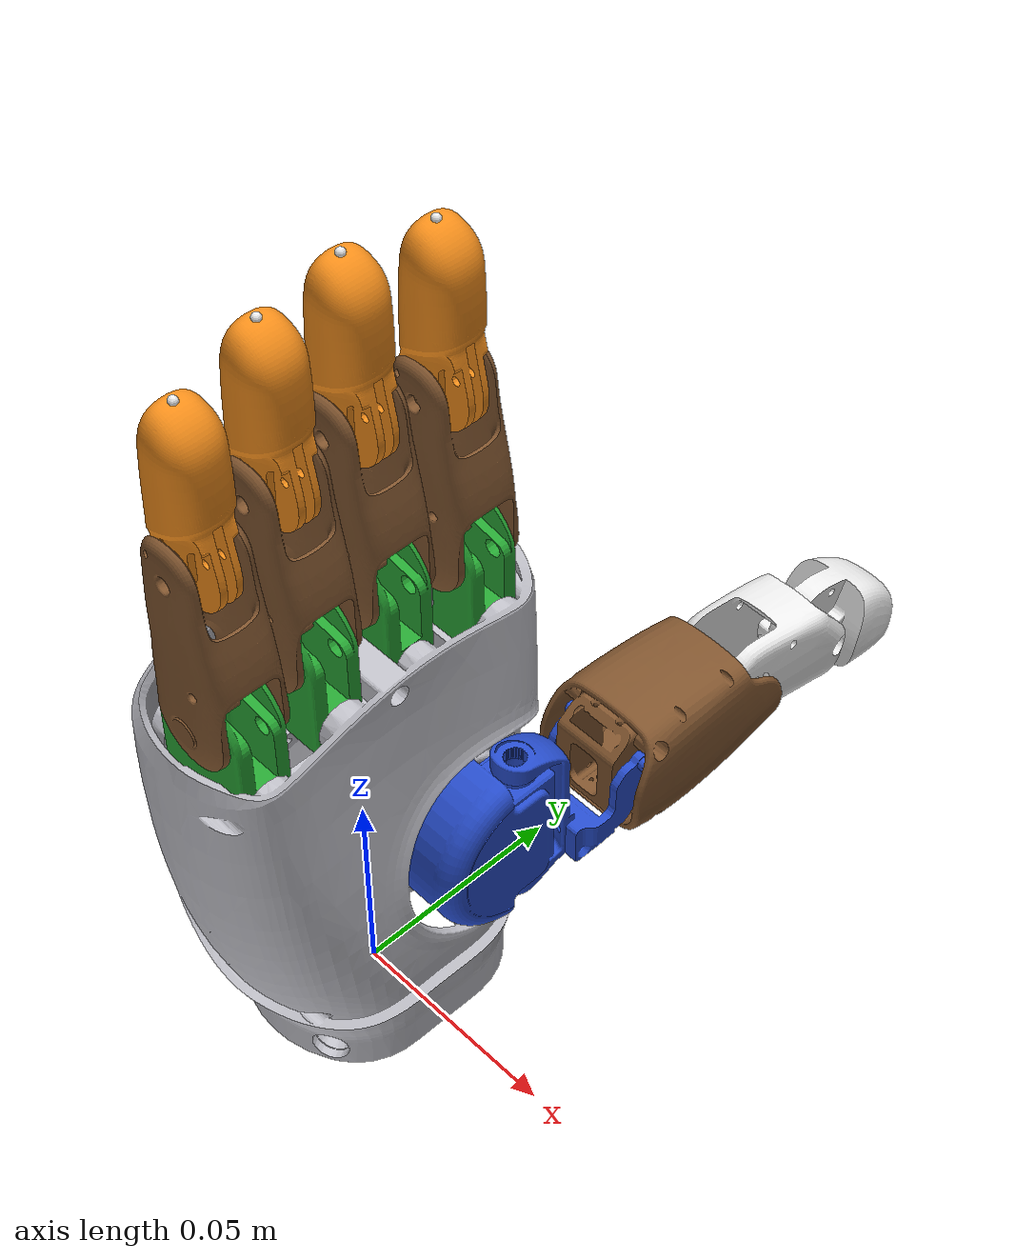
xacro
<?xml version="1.0"?>

<robot xmlns:xacro="http://www.ros.org/wiki/xacro" name="omnihand">

<xacro:include filename="$(find omnihand_description)/urdf/xacro/hand.xacro" />

<link name="base_link">
    <visual>
        <origin xyz="0.0 0.0 0.0" rpy="0.0 0.0 0.0" />
        <geometry>
            <box size="0.001 0.001 0.001" />
        </geometry>
    </visual>
</link>

<xacro:hand name="R" mirror="1" mirror_mesh="False" >
    <origin xyz="0.0 0.0 0.0" rpy="0.0 0.0 0.0" />
</xacro:hand>

</robot>

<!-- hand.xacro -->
<robot xmlns:xacro="http://www.ros.org/wiki/xacro">

    <xacro:include filename="$(find omnihand_description)/urdf/xacro/const.xacro" />
    <xacro:include filename="$(find omnihand_description)/urdf/xacro/finger.xacro" />
    <xacro:include filename="$(find omnihand_description)/urdf/xacro/material.xacro" />
    <xacro:property name="mesh_path" value="package://omnihand_description/meshes" />

    <xacro:macro name="hand" params="name mirror mirror_mesh *origin">

        <joint name="${name}_palm_joint" type="fixed">
            <xacro:insert_block name="origin" />
            <parent link="base_link" />
            <child link="${name}_palm" />
        </joint>

        <link name="${name}_palm">
            <visual>
                <origin rpy="0 0 0" xyz="0 0 0" />
                <geometry>
                    <xacro:if value="${mirror_mesh == True}">
                        <mesh filename="${mesh_path}/l_palm.STL" />
                    </xacro:if>
                    <xacro:if value="${mirror_mesh == False}">
                        <mesh filename="${mesh_path}/r_palm.STL" />
                    </xacro:if>
                </geometry>
                <material name="silver" />
            </visual>
            <collision>
                <origin rpy="0 0 0" xyz="0 0 ${palm_collision_cylinder_z}" />
                <geometry>
                    <cylinder radius="${palm_collision_cylinder_r}"
                        length="${palm_collision_cylinder_l}" />
                </geometry>
            </collision>
            <collision>
                <origin rpy="0 0 0" xyz="0 0 ${palm_collision_box_z}" />
                <geometry>
                    <box
                        size="${palm_collision_box_l} ${palm_collision_box_w} ${palm_collision_box_h}" />
                </geometry>
            </collision>
            <inertial>
                <origin rpy="0 0 0" xyz="${palm_com_x} ${palm_com_y*mirror} ${palm_com_z}" />
                <mass value="${palm_mass}" />
                <inertia
                    ixx="${palm_ixx}" ixy="${palm_ixy*mirror}" ixz="${palm_ixz}"
                    iyy="${palm_iyy}" iyz="${palm_iyz*mirror}" izz="${palm_izz}" />
            </inertial>
        </link>

        <!-- thumb  -->
        <joint name="${name}_thumb_roll_joint" type="revolute">
            <origin xyz="${thumb_roll_x} ${thumb_roll_y*mirror} ${thumb_roll_z}" rpy="0 0 0" />
            <parent link="${name}_palm" />
            <child link="${name}_thumb_roll" />
            <axis xyz="1 0 0" />
            <xacro:if value="${mirror_mesh == True}">
                <limit effort="${thumb_roll_torque_max}" velocity="${thumb_roll_velocity_max}"
                    lower="${thumb_roll_position_max*mirror}"
                    upper="${thumb_roll_position_min*mirror}" />
            </xacro:if>
            <xacro:if value="${mirror_mesh == False}">
                <limit effort="${thumb_roll_torque_max}" velocity="${thumb_roll_velocity_max}"
                    lower="${thumb_roll_position_min}" upper="${thumb_roll_position_max}" />
            </xacro:if>
        </joint>

        <link name="${name}_thumb_roll">
            <visual>
                <origin rpy="0 0 0" xyz="0 0 0" />
                <geometry>
                    <xacro:if value="${mirror_mesh == True}">
                        <mesh filename="${mesh_path}/l_thumb_roll.STL" />
                    </xacro:if>
                    <xacro:if value="${mirror_mesh == False}">
                        <mesh filename="${mesh_path}/r_thumb_roll.STL" />
                    </xacro:if>
                </geometry>
                <material name="blue" />
            </visual>
            <inertial>
                <origin rpy="0 0 0"
                    xyz="${thumb_roll_com_x} ${thumb_roll_com_y*mirror} ${thumb_roll_com_z}" />
                <mass value="${thumb_roll_mass}" />
                <inertia
                    ixx="${thumb_roll_ixx}" ixy="${thumb_roll_ixy*mirror}"
                    ixz="${thumb_roll_ixz}"
                    iyy="${thumb_roll_iyy}" iyz="${thumb_roll_iyz*mirror}" izz="${thumb_roll_izz}" />
            </inertial>
        </link>

        <joint name="${name}_thumb_abad_joint" type="revolute">
            <origin xyz="${thumb_abad_x} ${thumb_abad_y*mirror} ${thumb_abad_z}" rpy="0 0 0" />
            <parent link="${name}_thumb_roll" />
            <child link="${name}_thumb_abad" />
            <axis xyz="0 0 1" />
            <xacro:if value="${mirror_mesh == True}">
                <limit effort="${thumb_abad_torque_max}" velocity="${thumb_abad_velocity_max}"
                    lower="${thumb_abad_position_max*mirror}"
                    upper="${thumb_abad_position_min*mirror}" />
            </xacro:if>
            <xacro:if value="${mirror_mesh == False}">
                <limit effort="${thumb_abad_torque_max}" velocity="${thumb_abad_velocity_max}"
                    lower="${thumb_abad_position_min}" upper="${thumb_abad_position_max}" />
            </xacro:if>
        </joint>

        <link name="${name}_thumb_abad">
            <visual>
                <xacro:if value="${mirror_mesh == True}">
                    <origin rpy="0 0 3.14" xyz="0 0 0" />
                </xacro:if>
                <xacro:if value="${mirror_mesh == False}">
                    <origin rpy="0 0 0" xyz="0 0 0" />
                </xacro:if>
                <geometry>
                    <mesh filename="${mesh_path}/thumb_abad.STL" />
                </geometry>
                <material name="blue" />
            </visual>
            <inertial>
                <origin rpy="0 0 0"
                    xyz="${thumb_abad_com_x} ${thumb_abad_com_y*mirror} ${thumb_abad_com_z}" />
                <mass value="${thumb_abad_mass}" />
                <inertia
                    ixx="${thumb_abad_ixx}" ixy="${thumb_abad_ixy*mirror}"
                    ixz="${thumb_abad_ixz}"
                    iyy="${thumb_abad_iyy}" iyz="${thumb_abad_iyz*mirror}" izz="${thumb_abad_izz}" />
            </inertial>
        </link>

        <joint name="${name}_thumb_mcp_joint" type="revolute">
            <origin xyz="${thumb_mcp_x} ${thumb_mcp_y*mirror} ${thumb_mcp_z}"
                rpy="0 0 0" />
            <parent link="${name}_thumb_abad" />
            <child link="${name}_thumb_mcp" />
            <axis xyz="1 0 0" />
            <xacro:if value="${mirror_mesh == True}">
                <limit effort="${thumb_mcp_torque_max}" velocity="${thumb_mcp_velocity_max}"
                    lower="${thumb_mcp_position_max*mirror}"
                    upper="${thumb_mcp_position_min*mirror}" />
            </xacro:if>
            <xacro:if value="${mirror_mesh == False}">
                <limit effort="${thumb_mcp_torque_max}" velocity="${thumb_mcp_velocity_max}"
                    lower="${thumb_mcp_position_min}" upper="${thumb_mcp_position_max}" />
            </xacro:if>
        </joint>
        <link name="${name}_thumb_mcp">
            <visual>
                <xacro:if value="${mirror_mesh == True}">
                    <origin rpy="0 0 3.14" xyz="0 0 0" />
                </xacro:if>
                <xacro:if value="${mirror_mesh == False}">
                    <origin rpy="0 0 0" xyz="0 0 0" />
                </xacro:if>
                <geometry>
                    <mesh filename="${mesh_path}/thumb_mcp.STL" />
                </geometry>
                <material name="brown" />
            </visual>
            <collision>
                <origin rpy="0 0 0"
                    xyz="0 ${thumb_mcp_collision_box_y*mirror} ${thumb_mcp_collision_box_z}" />
                <geometry>
                    <box
                        size="${thumb_mcp_collision_box_l} ${thumb_mcp_collision_box_w} ${thumb_mcp_collision_box_h}" />
                </geometry>
            </collision>
            <inertial>
                <origin rpy="0 0 0"
                    xyz="${thumb_mcp_com_x} ${thumb_mcp_com_y*mirror} ${thumb_mcp_com_z}" />
                <mass value="${thumb_mcp_mass}" />
                <inertia
                    ixx="${thumb_mcp_ixx}" ixy="${thumb_mcp_ixy*mirror}" ixz="${thumb_mcp_ixz}"
                    iyy="${thumb_mcp_iyy}" iyz="${thumb_mcp_iyz*mirror}" izz="${thumb_mcp_izz}" />
            </inertial>
        </link>

        <joint name="${name}_thumb_pip_joint" type="revolute">
            <origin xyz="${thumb_pip_x} ${thumb_pip_y*mirror} ${thumb_pip_z}" rpy="0 0 0" />
            <parent link="${name}_thumb_mcp" />
            <child link="${name}_thumb_pip" />
            <axis xyz="1 0 0" />
            <xacro:if value="${mirror_mesh == True}">
                <limit effort="${thumb_pip_torque_max}" velocity="${thumb_pip_velocity_max}"
                    lower="${thumb_pip_position_max*mirror}"
                    upper="${thumb_pip_position_min*mirror}" />
            </xacro:if>
            <xacro:if value="${mirror_mesh == False}">
                <limit effort="${thumb_pip_torque_max}" velocity="${thumb_pip_velocity_max}"
                    lower="${thumb_pip_position_min}" upper="${thumb_pip_position_max}" />
            </xacro:if>
            <mimic
                joint="${name}_thumb_mcp_joint"
                multiplier="${thumb_pip_multiplier}"
                offset="0" />
        </joint>
        <link name="${name}_thumb_pip">
            <visual>
                <xacro:if value="${mirror_mesh == True}">
                    <origin rpy="0 0 3.14" xyz="0 0 0" />
                </xacro:if>
                <xacro:if value="${mirror_mesh == False}">
                    <origin rpy="0 0 0" xyz="0 0 0" />
                </xacro:if>
                <geometry>
                    <mesh filename="${mesh_path}/thumb_pip.STL" />
                </geometry>
                <material name="white" />
            </visual>
            <collision>
                <origin rpy="${thumb_pip_collision_box_rotr*mirror} 0 0"
                    xyz="0 ${thumb_pip_collision_box_y*mirror} ${thumb_pip_collision_box_z}" />
                <geometry>
                    <box
                        size="${thumb_pip_collision_box_l} ${thumb_pip_collision_box_w} ${thumb_pip_collision_box_h}" />
                </geometry>
            </collision>
            <inertial>
                <origin rpy="0 0 0"
                    xyz="${thumb_pip_com_x} ${thumb_pip_com_y*mirror} ${thumb_pip_com_z}" />
                <mass value="${thumb_pip_mass}" />
                <inertia
                    ixx="${thumb_pip_ixx}" ixy="${thumb_pip_ixy*mirror}" ixz="${thumb_pip_ixz}"
                    iyy="${thumb_pip_iyy}" iyz="${thumb_pip_iyz*mirror}" izz="${thumb_pip_izz}" />
            </inertial>
        </link>

        <joint name="${name}_thumb_dip_joint" type="revolute">
            <origin xyz="${thumb_dip_x} ${thumb_dip_y*mirror} ${thumb_dip_z}" rpy="0 0 0" />
            <parent link="${name}_thumb_pip" />
            <child link="${name}_thumb_dip" />
            <axis xyz="1 0 0" />
            <xacro:if value="${mirror_mesh == True}">
                <limit effort="${thumb_dip_torque_max}" velocity="${thumb_dip_velocity_max}"
                    lower="${thumb_dip_position_max*mirror}"
                    upper="${thumb_dip_position_min*mirror}" />
            </xacro:if>
            <xacro:if value="${mirror_mesh == False}">
                <limit effort="${thumb_dip_torque_max}" velocity="${thumb_dip_velocity_max}"
                    lower="${thumb_dip_position_min}" upper="${thumb_dip_position_max}" />
            </xacro:if>
            <mimic
                joint="${name}_thumb_mcp_joint"
                multiplier="${thumb_dip_multiplier}"
                offset="0" />
        </joint>
        <link name="${name}_thumb_dip">
            <visual>
                <xacro:if value="${mirror_mesh == True}">
                    <origin rpy="0 0 3.14" xyz="0 0 0" />
                </xacro:if>
                <xacro:if value="${mirror_mesh == False}">
                    <origin rpy="0 0 0" xyz="0 0 0" />
                </xacro:if>
                <geometry>
                    <mesh filename="${mesh_path}/thumb_dip.STL" />
                </geometry>
                <material name="white" />
            </visual>
            <collision>
                <origin rpy="${thumb_dip_collision_cylinder_rotr*mirror} 0 0"
                    xyz="0 ${thumb_dip_collision_cylinder_y*mirror} ${thumb_dip_collision_cylinder_z}" />
                <geometry>
                    <cylinder radius="${thumb_dip_collision_cylinder_r}"
                        length="${thumb_dip_collision_cylinder_l}" />
                </geometry>
            </collision>
            <inertial>
                <origin rpy="0 0 0"
                    xyz="${thumb_dip_com_x} ${thumb_dip_com_y*mirror} ${thumb_dip_com_z}" />
                <mass value="${thumb_dip_mass}" />
                <inertia
                    ixx="${thumb_dip_ixx}" ixy="${thumb_dip_ixy*mirror}" ixz="${thumb_dip_ixz}"
                    iyy="${thumb_dip_iyy}" iyz="${thumb_dip_iyz*mirror}" izz="${thumb_dip_izz}" />
            </inertial>
        </link>
        <joint name="${name}_thumb_tip_joint" type="fixed">
            <origin xyz="0 ${thumb_tip_y*mirror} ${thumb_tip_z}" rpy="0 0 0" />
            <parent link="${name}_thumb_dip" />
            <child link="${name}_thumb_tip" />
        </joint>
        <link name="${name}_thumb_tip">
            <visual>
                <origin rpy="0 0 0" xyz="0 0 0" />
                <geometry>
                    <sphere radius="1e-3" />
                </geometry>
                <material name="white" />
            </visual>
        </link>

        <!-- finger  -->
        <joint name="${name}_index_abad_joint" type="revolute">
            <origin xyz="${index_abad_x} ${index_abad_y*mirror} ${index_abad_z}" rpy="0 0 0" />
            <parent link="${name}_palm" />
            <child link="${name}_index_abad" />
            <axis xyz="1 0 0" />

            <xacro:if value="${mirror_mesh == True}">
                <limit effort="${index_abad_torque_max}" velocity="${index_abad_velocity_max}"
                    lower="${index_abad_position_max*mirror}"
                    upper="${index_abad_position_min*mirror}" />
            </xacro:if>
            <xacro:if value="${mirror_mesh == False}">
                <limit effort="${index_abad_torque_max}" velocity="${index_abad_velocity_max}"
                    lower="${index_abad_position_min}" upper="${index_abad_position_max}" />
            </xacro:if>
        </joint>
        <xacro:finger prefix="${name}_index" mesh_path="${mesh_path}" />

        <joint name="${name}_middle_abad_joint" type="fixed">
            <origin xyz="${middle_abad_x} ${middle_abad_y*mirror} ${middle_abad_z}" rpy="0 0 0" />
            <parent link="${name}_palm" />
            <child link="${name}_middle_abad" />
        </joint>
        <xacro:finger prefix="${name}_middle" mesh_path="${mesh_path}" />

        <joint name="${name}_ring_abad_joint" type="revolute">
            <origin xyz="${ring_abad_x} ${ring_abad_y*mirror} ${ring_abad_z}" rpy="0 0 0" />
            <parent link="${name}_palm" />
            <child link="${name}_ring_abad" />
            <axis xyz="1 0 0" />
            <xacro:if value="${mirror_mesh == True}">
                <limit effort="${ring_abad_torque_max}" velocity="${ring_abad_velocity_max}"
                    lower="${ring_abad_position_max*mirror}"
                    upper="${ring_abad_position_min*mirror}" />
            </xacro:if>
            <xacro:if value="${mirror_mesh == False}">
                <limit effort="${ring_abad_torque_max}" velocity="${ring_abad_velocity_max}"
                    lower="${ring_abad_position_min}" upper="${ring_abad_position_max}" />
            </xacro:if>
        </joint>
        <xacro:finger prefix="${name}_ring" mesh_path="${mesh_path}" />

        <joint name="${name}_pinky_abad_joint" type="revolute">
            <origin xyz="${pinky_abad_x} ${pinky_abad_y*mirror} ${pinky_abad_z}" rpy="0 0 0" />
            <parent link="${name}_palm" />
            <child link="${name}_pinky_abad" />
            <axis xyz="1 0 0" />
            <xacro:if value="${mirror_mesh == True}">
                <limit effort="${pinky_abad_torque_max}" velocity="${pinky_abad_velocity_max}"
                    lower="${pinky_abad_position_max*mirror}"
                    upper="${pinky_abad_position_min*mirror}" />
            </xacro:if>
            <xacro:if value="${mirror_mesh == False}">
                <limit effort="${pinky_abad_torque_max}" velocity="${pinky_abad_velocity_max}"
                    lower="${pinky_abad_position_min}" upper="${pinky_abad_position_max}" />
            </xacro:if>
        </joint>
        <xacro:finger prefix="${name}_pinky" mesh_path="${mesh_path}" />

    </xacro:macro>
</robot>

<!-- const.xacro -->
<robot xmlns:xacro="http://www.ros.org/wiki/xacro">

    <!-- joint position value -->

    <xacro:property name="thumb_roll_x" value="0" />
    <xacro:property name="thumb_roll_y" value="0.018521" />
    <xacro:property name="thumb_roll_z" value="0.047551" />

    <xacro:property name="thumb_abad_x" value="0.020801" />
    <xacro:property name="thumb_abad_y" value="0.004292" />
    <xacro:property name="thumb_abad_z" value="-0.00052506" />

    <xacro:property name="thumb_mcp_x" value="0" />
    <xacro:property name="thumb_mcp_y" value="0.0265" />
    <xacro:property name="thumb_mcp_z" value="-0.005275" />

    <xacro:property name="thumb_pip_x" value="0" />
    <xacro:property name="thumb_pip_y" value="0.036231" />
    <xacro:property name="thumb_pip_z" value="0.0036755" />

    <xacro:property name="thumb_dip_x" value="0" />
    <xacro:property name="thumb_dip_y" value="0.026468" />
    <xacro:property name="thumb_dip_z" value="-0.0073106" />

    <xacro:property name="thumb_tip_y" value="0.02392" />
    <xacro:property name="thumb_tip_z" value="-0.01158" />

    <xacro:property name="index_abad_x" value="0" />
    <xacro:property name="index_abad_y" value=" 0.02695" />
    <xacro:property name="index_abad_z" value=" 0.094548" />

    <xacro:property name="middle_abad_x" value="-0.0025" />
    <xacro:property name="middle_abad_y" value="0.00795" />
    <xacro:property name="middle_abad_z" value="0.096548" />

    <xacro:property name="ring_abad_x" value="-0.00151" />
    <xacro:property name="ring_abad_y" value="-0.01105" />
    <xacro:property name="ring_abad_z" value="0.094548" />

    <xacro:property name="pinky_abad_x" value="0" />
    <xacro:property name="pinky_abad_y" value="-0.03005" />
    <xacro:property name="pinky_abad_z" value="0.089548" />

    <xacro:property name="finger_pip_x" value="0.00048163" />
    <xacro:property name="finger_pip_y" value="0" />
    <xacro:property name="finger_pip_z" value="0.017575" />

    <xacro:property name="finger_dip_x" value="-0.0015" />
    <xacro:property name="finger_dip_y" value="0" />
    <xacro:property name="finger_dip_z" value="0.036" />

    <xacro:property name="finger_tip_x" value="-0.0011" />
    <xacro:property name="finger_tip_z" value="0.03612" />

    <!-- collision parameters -->
    <xacro:property name="palm_collision_cylinder_z" value="0.00725" />
    <xacro:property name="palm_collision_cylinder_r" value="0.028" />
    <xacro:property name="palm_collision_cylinder_l" value="0.0145" />

    <xacro:property name="palm_collision_box_z" value="0.057" />
    <xacro:property name="palm_collision_box_l" value="0.04" />
    <xacro:property name="palm_collision_box_w" value="0.082" />
    <xacro:property name="palm_collision_box_h" value="0.085" />

    <xacro:property name="thumb_mcp_collision_box_y" value="0.00650" />
    <xacro:property name="thumb_mcp_collision_box_z" value="0.00237" />
    <xacro:property name="thumb_mcp_collision_box_l" value="0.029" />
    <xacro:property name="thumb_mcp_collision_box_w" value="0.042" />
    <xacro:property name="thumb_mcp_collision_box_h" value="0.0325" />

    <xacro:property name="thumb_pip_collision_box_rotr" value="-0.2" />
    <xacro:property name="thumb_pip_collision_box_y" value="0.0116" />
    <xacro:property name="thumb_pip_collision_box_z" value="-0.0032" />
    <xacro:property name="thumb_pip_collision_box_l" value="0.019" />
    <xacro:property name="thumb_pip_collision_box_w" value="0.035" />
    <xacro:property name="thumb_pip_collision_box_h" value="0.0225" />

    <xacro:property name="thumb_dip_collision_cylinder_rotr" value="-1.8" />
    <xacro:property name="thumb_dip_collision_cylinder_y" value="0.0134" />
    <xacro:property name="thumb_dip_collision_cylinder_z" value="-0.0026" />
    <xacro:property name="thumb_dip_collision_cylinder_r" value="0.011" />
    <xacro:property name="thumb_dip_collision_cylinder_l" value="0.023" />

    <xacro:property name="finger_pip_collision_z" value="0.014" />
    <xacro:property name="finger_pip_collision_r" value="0.01" />
    <xacro:property name="finger_pip_collision_l" value="0.044" />

    <xacro:property name="finger_dip_collision_z" value="0.018" />
    <xacro:property name="finger_dip_collision_r" value="0.007" />
    <xacro:property name="finger_dip_collision_l" value="0.034" />

    <!-- mimic joint -->
    <xacro:property name="thumb_pip_multiplier" value="1.33" />
    <xacro:property name="thumb_dip_multiplier" value="1.3" />
    <xacro:property name="finger_dip_multiplier" value="1.097" />

    <!-- joint limits -->
    <xacro:property name="thumb_roll_position_max" value="${50*pi/180.0}" />
    <xacro:property name="thumb_roll_position_min" value="${-10*pi/180.0}" />
    <xacro:property name="thumb_roll_velocity_max" value="0.164" />
    <xacro:property name="thumb_roll_torque_max" value="0.419" />

    <xacro:property name="thumb_abad_position_max" value="0" />
    <xacro:property name="thumb_abad_position_min" value="${-100*pi/180.0}" />
    <xacro:property name="thumb_abad_velocity_max" value="0.164" />
    <xacro:property name="thumb_abad_torque_max" value="0.314" />

    <xacro:property name="thumb_mcp_position_max" value="${49*pi/180.0}" />
    <xacro:property name="thumb_mcp_position_min" value="0" />
    <xacro:property name="thumb_mcp_velocity_max" value="0.308" />
    <xacro:property name="thumb_mcp_torque_max" value="1.764" />

    <xacro:property name="thumb_pip_position_max" value="${65*pi/180.0}" />
    <xacro:property name="thumb_pip_position_min" value="0" />
    <xacro:property name="thumb_pip_velocity_max" value="0.308" />
    <xacro:property name="thumb_pip_torque_max" value="1.764" />

    <xacro:property name="thumb_dip_position_max" value="${65*pi/180.0}" />
    <xacro:property name="thumb_dip_position_min" value="0" />
    <xacro:property name="thumb_dip_velocity_max" value="0.308" />
    <xacro:property name="thumb_dip_torque_max" value="1.764" />

    <xacro:property name="index_abad_position_max" value="0" />
    <xacro:property name="index_abad_position_min" value="${-12*pi/180.0}" />
    <xacro:property name="index_abad_velocity_max" value="0.164" />
    <xacro:property name="index_abad_torque_max" value="1.863" />

    <xacro:property name="ring_abad_position_max" value="${10*pi/180.0}" />
    <xacro:property name="ring_abad_position_min" value="0" />
    <xacro:property name="ring_abad_velocity_max" value="0.164" />
    <xacro:property name="ring_abad_torque_max" value="2.766" />

    <xacro:property name="pinky_abad_position_max" value="${10*pi/180.0}" />
    <xacro:property name="pinky_abad_position_min" value="0" />
    <xacro:property name="pinky_abad_velocity_max" value="0.164" />
    <xacro:property name="pinky_abad_torque_max" value="3.393" />

    <xacro:property name="finger_pip_position_max" value="${90*pi/180.0}" />
    <xacro:property name="finger_pip_position_min" value="0" />
    <xacro:property name="finger_pip_velocity_max" value="0.308" />
    <xacro:property name="finger_pip_torque_max" value="1.764" />

    <xacro:property name="finger_dip_position_max" value="${105*pi/180.0}" />
    <xacro:property name="finger_dip_position_min" value="0" />
    <xacro:property name="finger_dip_velocity_max" value="0.308" />
    <xacro:property name="finger_dip_torque_max" value="1.764" />

    <!-- dynamics inertial value -->
    <!-- palm -->
    <xacro:property name="palm_mass" value="0.1594" />
    <xacro:property name="palm_com_x" value="0.0035098" />
    <xacro:property name="palm_com_y" value="0.0445331" />
    <xacro:property name="palm_com_z" value="-0.0066051" />
    <xacro:property name="palm_ixx" value="0.00010250 " />
    <xacro:property name="palm_ixy" value="-0.00000310" />
    <xacro:property name="palm_ixz" value="0.00000097" />
    <xacro:property name="palm_iyy" value="0.00009973" />
    <xacro:property name="palm_iyz" value="-0.00000083" />
    <xacro:property name="palm_izz" value="0.00015087" />

    <!-- thumb_roll -->
    <xacro:property name="thumb_roll_mass" value="0.0250" />
    <xacro:property name="thumb_roll_com_x" value="-0.0038510" />
    <xacro:property name="thumb_roll_com_y" value="-0.0003110" />
    <xacro:property name="thumb_roll_com_z" value="0.0084010" />
    <xacro:property name="thumb_roll_ixx" value="0.00000286" />
    <xacro:property name="thumb_roll_ixy" value="0.00000000" />
    <xacro:property name="thumb_roll_ixz" value="0.00000003" />
    <xacro:property name="thumb_roll_iyy" value="0.00000201" />
    <xacro:property name="thumb_roll_iyz" value="0.00000005" />
    <xacro:property name="thumb_roll_izz" value="0.00000369" />

    <!-- thumb_abad -->
    <xacro:property name="thumb_abad_mass" value="0.0056" />
    <xacro:property name="thumb_abad_com_x" value="-0.0000012" />
    <xacro:property name="thumb_abad_com_y" value="0.0129928" />
    <xacro:property name="thumb_abad_com_z" value="-0.0041829" />
    <xacro:property name="thumb_abad_ixx" value="0.00000103" />
    <xacro:property name="thumb_abad_ixy" value="0.00000000" />
    <xacro:property name="thumb_abad_ixz" value="0.00000000" />
    <xacro:property name="thumb_abad_iyy" value="0.00000088" />
    <xacro:property name="thumb_abad_iyz" value="-0.00000006" />
    <xacro:property name="thumb_abad_izz" value="0.00000052" />

    <!-- thumb mcp -->
    <xacro:property name="thumb_mcp_mass" value="0.0511" />
    <xacro:property name="thumb_mcp_com_x" value="-0.0000183" />
    <xacro:property name="thumb_mcp_com_y" value="0.0225829" />
    <xacro:property name="thumb_mcp_com_z" value="0.0024013" />
    <xacro:property name="thumb_mcp_ixx" value="0.00001274" />
    <xacro:property name="thumb_mcp_ixy" value="-0.00000001" />
    <xacro:property name="thumb_mcp_ixz" value="0.00000000" />
    <xacro:property name="thumb_mcp_iyy" value="0.00000472" />
    <xacro:property name="thumb_mcp_iyz" value="-0.00000028" />
    <xacro:property name="thumb_mcp_izz" value="0.00001121" />

    <!-- thumb pip -->
    <xacro:property name="thumb_pip_mass" value="0.0110" />
    <xacro:property name="thumb_pip_com_x" value="-0.0000010" />
    <xacro:property name="thumb_pip_com_y" value="0.0144610" />
    <xacro:property name="thumb_pip_com_z" value="-0.0041500" />
    <xacro:property name="thumb_pip_ixx" value="0.00000134" />
    <xacro:property name="thumb_pip_ixy" value="0.00000000" />
    <xacro:property name="thumb_pip_ixz" value="0.00000000" />
    <xacro:property name="thumb_pip_iyy" value="0.00000079" />
    <xacro:property name="thumb_pip_iyz" value="0.00000007" />
    <xacro:property name="thumb_pip_izz" value="0.00000131" />

    <!-- thumb dip -->
    <xacro:property name="thumb_dip_mass" value="0.0070" />
    <xacro:property name="thumb_dip_com_x" value="-0.0000030" />
    <xacro:property name="thumb_dip_com_y" value="0.0103920" />
    <xacro:property name="thumb_dip_com_z" value="-0.0016140" />
    <xacro:property name="thumb_dip_ixx" value="0.00000052" />
    <xacro:property name="thumb_dip_ixy" value="0.00000000" />
    <xacro:property name="thumb_dip_ixz" value="0.00000000" />
    <xacro:property name="thumb_dip_iyy" value="0.00000033" />
    <xacro:property name="thumb_dip_iyz" value="-0.00000016" />
    <xacro:property name="thumb_dip_izz" value="0.00000044" />

    <!-- finger_abad -->
    <xacro:property name="finger_abad_mass" value="0.0400" />
    <xacro:property name="finger_abad_com_x" value="-0.0018959" />
    <xacro:property name="finger_abad_com_y" value="-0.0000098" />
    <xacro:property name="finger_abad_com_z" value="0.0066855" />
    <xacro:property name="finger_abad_ixx" value="0.00000737" />
    <xacro:property name="finger_abad_ixy" value="0.00000000" />
    <xacro:property name="finger_abad_ixz" value="-0.00000014" />
    <xacro:property name="finger_abad_iyy" value="0.00000882" />
    <xacro:property name="finger_abad_iyz" value="0.00000000" />
    <xacro:property name="finger_abad_izz" value="0.00000265" />

    <!-- finger_pip -->
    <xacro:property name="finger_pip_mass" value="0.0040" />
    <xacro:property name="finger_pip_com_x" value="-0.0028840" />
    <xacro:property name="finger_pip_com_y" value="0.0000015" />
    <xacro:property name="finger_pip_com_z" value="0.0199970" />
    <xacro:property name="finger_pip_ixx" value="0.00000070" />
    <xacro:property name="finger_pip_ixy" value="0.00000000" />
    <xacro:property name="finger_pip_ixz" value="0.00000001" />
    <xacro:property name="finger_pip_iyy" value="0.00000068" />
    <xacro:property name="finger_pip_iyz" value="0.00000000" />
    <xacro:property name="finger_pip_izz" value="0.00000026" />

    <!-- finger_dip -->
    <xacro:property name="finger_dip_mass" value="0.0030" />
    <xacro:property name="finger_dip_com_x" value="0.0006180" />
    <xacro:property name="finger_dip_com_y" value="0.0000000" />
    <xacro:property name="finger_dip_com_z" value="0.0192390" />
    <xacro:property name="finger_dip_ixx" value="0.00000040" />
    <xacro:property name="finger_dip_ixy" value="0.00000000" />
    <xacro:property name="finger_dip_ixz" value="0.00000000" />
    <xacro:property name="finger_dip_iyy" value="0.00000040" />
    <xacro:property name="finger_dip_iyz" value="0.00000000" />
    <xacro:property name="finger_dip_izz" value="0.00000012" />

</robot>

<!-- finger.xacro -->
<robot xmlns:xacro="http://www.ros.org/wiki/xacro">

    <xacro:macro name="finger" params="prefix mesh_path">

        <link name="${prefix}_abad">
            <visual>
                <origin rpy="0 0 0" xyz="0 0 0" />
                <geometry>
                    <mesh filename="${mesh_path}/finger_abad.STL" />
                </geometry>
                <material name="green" />
            </visual>
            <inertial>
                <origin rpy="0 0 0"
                    xyz="${finger_abad_com_x} ${finger_abad_com_y} ${finger_abad_com_z}" />
                <mass value="${finger_abad_mass}" />
                <inertia
                    ixx="${finger_abad_ixx}" ixy="${finger_abad_ixy}" ixz="${finger_abad_ixz}"
                    iyy="${finger_abad_iyy}" iyz="${finger_abad_iyz}" izz="${finger_abad_izz}" />
            </inertial>
        </link>
        y <joint name="${prefix}_pip_joint" type="revolute">
            <origin xyz="${finger_pip_x} ${finger_pip_y} ${finger_pip_z}" rpy="0 0 0" />
            <parent link="${prefix}_abad" />
            <child link="${prefix}_pip" />
            <axis xyz="0 1 0" />
            <limit effort="${finger_pip_torque_max}" velocity="${finger_pip_velocity_max}"
                lower="${finger_pip_position_min}" upper="${finger_pip_position_max}" />
        </joint>

        <link
            name="${prefix}_pip">
            <visual>
                <origin rpy="0 0 0" xyz="0 0 0" />
                <geometry>
                    <mesh filename="${mesh_path}/finger_pip.STL" />
                </geometry>
                <material name="brown" />
            </visual>
            <collision>
                <origin rpy="0 0 0" xyz="0 0 ${finger_pip_collision_z}" />
                <geometry>
                    <cylinder radius="${finger_pip_collision_r}" length="${finger_pip_collision_l}" />
                </geometry>
            </collision>
            <inertial>
                <origin rpy="0 0 0"
                    xyz="${finger_pip_com_x} ${finger_pip_com_y} ${finger_pip_com_z}" />
                <mass value="${finger_pip_mass}" />
                <inertia
                    ixx="${finger_pip_ixx}" ixy="${finger_pip_ixy}"
                    ixz="${finger_pip_ixz}"
                    iyy="${finger_pip_iyy}" iyz="${finger_pip_iyz}"
                    izz="${finger_pip_izz}" />
            </inertial>
        </link>

        <joint
            name="${prefix}_dip_joint" type="revolute">
            <origin xyz=" ${finger_dip_x}  ${finger_dip_y} ${finger_dip_z}" rpy="0 0 0" />
            <parent link="${prefix}_pip" />
            <child link="${prefix}_dip" />
            <axis xyz="0 1 0" />
            <limit effort="${finger_dip_torque_max}" velocity="${finger_dip_velocity_max}"
                lower="${finger_dip_position_min}" upper="${finger_dip_position_max}" />
            <mimic
                joint="${prefix}_pip_joint"
                multiplier="${finger_dip_multiplier}"
                offset="0" />
        </joint>

        <link name="${prefix}_dip">
            <visual>
                <origin rpy="0 0 0" xyz="0 0 0" />
                <geometry>
                    <mesh filename="${mesh_path}/finger_dip.STL" />
                </geometry>
                <material name="orange" />
            </visual>
            <collision>
                <origin rpy="0 0 0" xyz="0 0 ${finger_dip_collision_z}" />
                <geometry>
                    <cylinder radius="${finger_dip_collision_r}" length="${finger_dip_collision_l}" />
                </geometry>
            </collision>
            <inertial>
                <origin rpy="0 0 0"
                    xyz="${finger_dip_com_x} ${finger_dip_com_y} ${finger_dip_com_z}" />
                <mass value="${finger_dip_mass}" />
                <inertia
                    ixx="${finger_dip_ixx}" ixy="${finger_dip_ixy}" ixz="${finger_dip_ixz}"
                    iyy="${finger_dip_iyy}" iyz="${finger_dip_iyz}" izz="${finger_dip_izz}" />
            </inertial>
        </link>

        <joint
            name="${prefix}_tip_joint" type="fixed">
            <origin xyz="${finger_tip_x} 0 ${finger_tip_z}" rpy="0 0 0" />
            <parent link="${prefix}_dip" />
            <child link="${prefix}_tip" />
        </joint>
        <link name="${prefix}_tip">
            <visual>
                <origin rpy="0 0 0" xyz="0 0 0" />
                <geometry>
                    <sphere radius="1e-3" />
                </geometry>
                <material name="white" />
            </visual>
        </link>
    </xacro:macro>
</robot>
